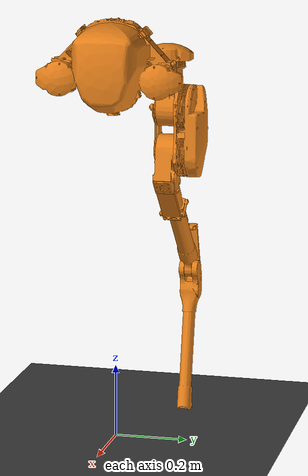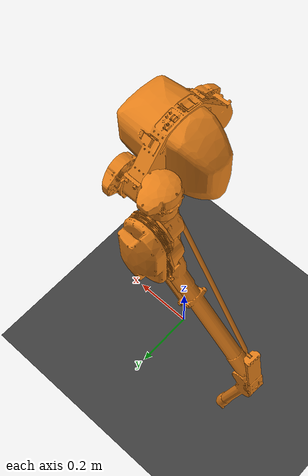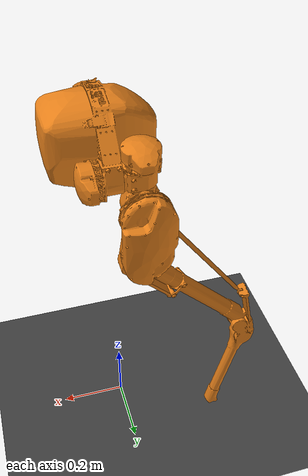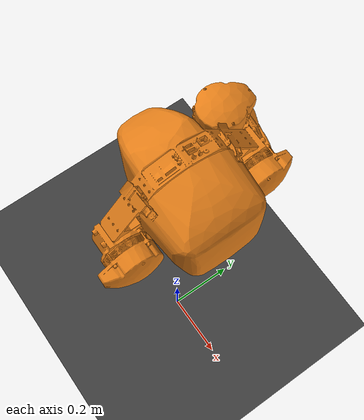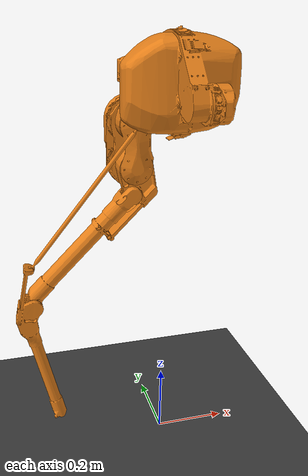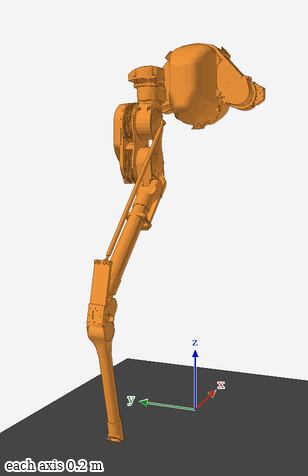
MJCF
<!-- Cassie simulation model developed by the Dynamic Robotics Laboratory -->
<mujoco model='cassie'>
  <compiler inertiafromgeom='auto' angle='degree' eulerseq='zyx' meshdir='cassie-stl-meshes'/>
  <size nuser_actuator='1' nuser_sensor='1' nuser_geom='1'/>
  <option timestep='0.0005' iterations='50' solver='PGS' gravity='0 0 -9.81'/>
  <!-- Timestep is set to 0.0005 because our controller runs at 2 kHz -->
  <!-- Larger values still have stable dynamics -->

  <visual>
    <quality shadowsize='4096'/>
    <map znear='0.05'/>
  </visual>

  <default>
    <joint limited='true'/>
    <motor ctrllimited='true'/>
    <geom contype='0' conaffinity='0' condim='1' solref='0.005 1'/>
    <equality solref='0.005 1'/>
    <default class='cassie'>
      <geom material='cassie'/>
    </default>
    <default class='collision'>
      <!-- User parameter for geoms is used to identify collision types -->
      <geom material='collision' contype='1' user='2'/>
      <default class='collision-left'>
        <geom contype='2' conaffinity='4'/>
      </default>
      <default class='collision-right'>
        <geom contype='4' conaffinity='2'/>
      </default>
    </default>
    <default class='obstacle'>
      <geom material='obstacle' condim='3' contype='8' conaffinity='15' user='1'/>
    </default>
  </default>

  <asset>
    <texture type='skybox' builtin='gradient' width='128' height='128' rgb1='0.4 0.6 0.8' rgb2='0 0 0'/>
    <texture name='plane' type='2d' builtin='checker' rgb1='0.2 0.2 0.2' rgb2='0.3 0.3 0.3' width='512' height='512'/>
    <material name='plane' reflectance='0.0' texture='plane' texrepeat='1 1' texuniform='true'/>
    <material name='cassie'    rgba='0.9 0.5 0.1 1'/>
    <material name='collision' rgba='0.1 0.5 0.9 0'/>
    <material name='obstacle'  rgba='0.2 0.6 0.2 1'/>
    <mesh name='cassie-pelvis' file='pelvis.stl'/>
    <mesh name='left-hip-roll'     file='hip-roll.stl'/>
    <mesh name='left-hip-yaw'      file='hip-yaw.stl'/>
    <mesh name='left-hip-pitch'    file='hip-pitch.stl'/>
    <mesh name='left-achilles-rod' file='achilles-rod.stl'/>
    <mesh name='left-knee'         file='knee.stl'/>
    <mesh name='left-knee-spring'  file='knee-spring.stl'/>
    <mesh name='left-shin'         file='shin.stl'/>
    <mesh name='left-tarsus'       file='tarsus.stl'/>
    <mesh name='left-heel-spring'  file='heel-spring.stl'/>
    <mesh name='left-foot-crank'   file='foot-crank.stl'/>
    <mesh name='left-plantar-rod'  file='plantar-rod.stl'/>
    <mesh name='left-foot'         file='foot.stl'/>
  </asset>

  <worldbody>
    <geom name='floor' pos='0 0 0' size='100 5 .125' type='plane' material='plane' condim='3' conaffinity='15'/>

    <light mode='trackcom' pos='0 0 5' dir='0 0 -1'/>
    <light directional='true' pos='0 0 3' dir='0 0 -1' diffuse='0.2 0.2 0.2' specular='0 0 0'/>

    <body name='cassie-pelvis' pos='0 0 1.01' childclass='cassie'>
      <camera name='track' pos='0 -3 1' zaxis='0 -1 0.5' mode='track'/>
      <!--camera name='track' pos='-3 0 0' xyaxes='0 -1 0 0 0 1' mode='track'/-->
      <inertial pos='0.05066 0.000346 0.02841' mass='10.33' fullinertia='0.085821 0.049222 0.08626 1.276e-05 -0.00016022 -0.000414'/>
      <joint type='slide' axis='1 0 0' limited='false'/>
      <joint type='slide' axis='0 1 0' limited='false'/>
      <joint type='slide' axis='0 0 1' limited='false' ref='1.01'/>
      <joint type='ball' limited='false'/>
      <geom type='mesh' mesh='cassie-pelvis'/>
      <geom type='sphere' size='0.15' pos='0.02 0 0.02' class='collision'/>
      <site name='imu' size='0.01' pos='0.03155 0 -0.07996'/>
      <body name='left-hip-roll' pos='0.021 0.135 0' xyaxes='0 0 -1 0 1 0'>
        <inertial pos='-0.01793 0.0001 -0.04428' mass='1.82' fullinertia='0.003431 0.003793 0.002135 -6.65e-07 -0.00084 3.99e-06'/>
        <joint name='left-hip-roll' type='hinge' range='-15 22.5' damping='1' armature='0.038125'/>
        <geom type='mesh' mesh='left-hip-roll'/>
        <body name='left-hip-yaw' pos='0 0 -0.07' xyaxes='0 0 1 0 1 0'>
          <inertial pos='0 -1e-05 -0.034277' mass='1.171' fullinertia='0.002443 0.002803 0.000842 -4e-08 2.462e-07 -2.71e-08'/>
          <joint name='left-hip-yaw' type='hinge' range='-22.5 22.5' damping='1' armature='0.038125'/>
          <geom type='mesh' mesh='left-hip-yaw'/>
          <body name='left-hip-pitch' pos='0 0 -0.09' xyaxes='0 0 -1 1 0 0'>
            <inertial pos='0.05946 5e-05 -0.03581' mass='5.52' fullinertia='0.010898 0.029714 0.030257 -0.0002669 -5.721e-05 9.17e-06'/>
            <joint name='left-hip-pitch' type='hinge' range='-50 80' damping='1' armature='0.09344'/>
            <geom type='mesh' mesh='left-hip-pitch'/>
            <geom type='capsule' size='0.08' fromto='0 0 -0.04 0.12 0 -0.0355' class='collision'/>
            <body name='left-achilles-rod' pos='0 0 0.045' xyaxes='0.7922 -0.60599 -0.072096 0.60349 0.79547 -0.054922'>
              <inertial pos='0.24719 0 0' mass='0.1567' fullinertia='3.754e-06 0.004487 0.004488 -3.74e-08 -1.61e-08 0'/>
              <joint name='left-achilles-rod' type='ball' limited='false' damping='0.01'/>
              <geom type='mesh' mesh='left-achilles-rod'/>
            </body>
            <body name='left-knee' pos='0.12 0 0.0045' xyaxes='0.70711 -0.70711 0 0.70711 0.70711 0'>
              <inertial pos='0.023 0.03207 -0.002181' mass='0.7578' fullinertia='0.001376 0.0010335 0.0021637 -0.00039744 -4.085e-05 -5.374e-05'/>
              <joint name='left-knee' type='hinge' ref='-45' range='-164 -37' damping='1' armature='0.09344'/>
              <geom type='mesh' mesh='left-knee'/>
              <body name='left-knee-spring' pos='0.06068 0.08241 0'>
                <inertial pos='0.0836 0.0034 0' mass='0.186' fullinertia='5.215e-05 0.00041205 0.0003669 6.87e-06 0 0'/>
                <geom type='mesh' mesh='left-knee-spring'/>
              </body>
              <body name='left-shin' pos='0.06068 0.04741 0'>
                <inertial pos='0.18338 0.001169 0.0002123' mass='0.577' fullinertia='0.00035939 0.014728 0.014707 -0.00020981 2.266e-05 -1.2e-07'/>
                <joint name='left-shin' type='hinge' range='-20 20' stiffness='1500' damping='0.1'/>
                <geom type='mesh' mesh='left-shin'/>
                <geom type='capsule' size='0.04' fromto='0 0 0 0.43476 0.02 0' class='collision-left'/>
                <body name='left-tarsus' pos='0.43476 0.02 0' xyaxes='0.52992 0.84805 0 -0.84805 0.52992 0'>
                  <inertial pos='0.11046 -0.03058 -0.00131' mass='0.782' fullinertia='0.00039238 0.013595 0.013674 0.00023651 -4.987e-05 -4.82e-06'/>
                  <joint name='left-tarsus' type='hinge' ref='58' range='50 170' damping='0.1'/>
                  <geom type='mesh' mesh='left-tarsus'/>
                  <geom type='capsule' size='0.04' fromto='-0.01269 -0.03059 0.00092 0.408 -0.04 0' class='collision-left'/>
                  <body name='left-heel-spring' pos='-0.01269 -0.03059 0.00092' xyaxes='-0.91211 0.40829 0.036948 -0.40992 -0.90952 -0.068841'>
                    <inertial pos='0.081 0.0022 0' mass='0.126' fullinertia='2.959e-05 0.00022231 0.0002007 7.15e-06 -6e-07 1e-07'/>
                    <joint name='left-heel-spring' type='hinge' limited='false' stiffness='1250'/>
                    <geom type='mesh' mesh='left-heel-spring'/>
                  </body>
                </body>
              </body>
            </body>
          </body>
        </body>
      </body>
    </body>

    <!-- Add any other moving bodies after the Cassie definition -->

  </worldbody>

  <equality>
    <connect body1='left-achilles-rod' body2='left-heel-spring' anchor='0.5012 0 0'/>
  </equality>

  <actuator>
    <!-- User parameter is the maximum no-load motor RPM -->
    <motor name='left-hip-roll'  joint='left-hip-roll'  gear='25' ctrllimited='true' ctrlrange='-4.5 4.5'   user='2900'/>
    <motor name='left-hip-yaw'   joint='left-hip-yaw'   gear='25' ctrllimited='true' ctrlrange='-4.5 4.5'   user='2900'/>
    <motor name='left-hip-pitch' joint='left-hip-pitch' gear='16' ctrllimited='true' ctrlrange='-12.2 12.2' user='1300'/>
    <motor name='left-knee'      joint='left-knee'      gear='16' ctrllimited='true' ctrlrange='-12.2 12.2' user='1300'/>
  </actuator>

  <sensor>
    <!-- User parameter is the number of absolute encoder bits -->
    <actuatorpos name='left-hip-roll-input'  actuator='left-hip-roll'  user='13'/>
    <actuatorpos name='left-hip-yaw-input'   actuator='left-hip-yaw'   user='13'/>
    <actuatorpos name='left-hip-pitch-input' actuator='left-hip-pitch' user='13'/>
    <actuatorpos name='left-knee-input'      actuator='left-knee'      user='13'/>
    <jointpos    name='left-shin-output'     joint='left-shin'         user='18' noise='2e-4'/>
    <jointpos    name='left-tarsus-output'   joint='left-tarsus'       user='18' noise='2e-4'/>

    <framequat     name='pelvis-orientation' objtype='site' objname='imu'/>
    <gyro          name='pelvis-angular-velocity'    site='imu' noise='5e-4' cutoff='34.9'/>
    <accelerometer name='pelvis-linear-acceleration' site='imu' noise='1e-2' cutoff='157'/>
    <magnetometer  name='pelvis-magnetometer'        site='imu'/>
  </sensor>

</mujoco>
